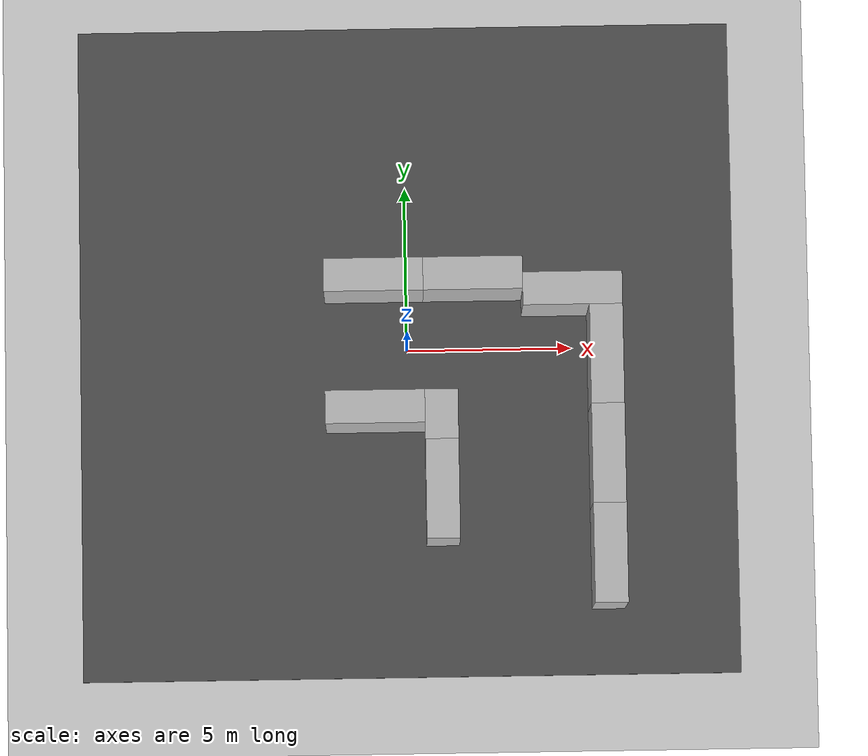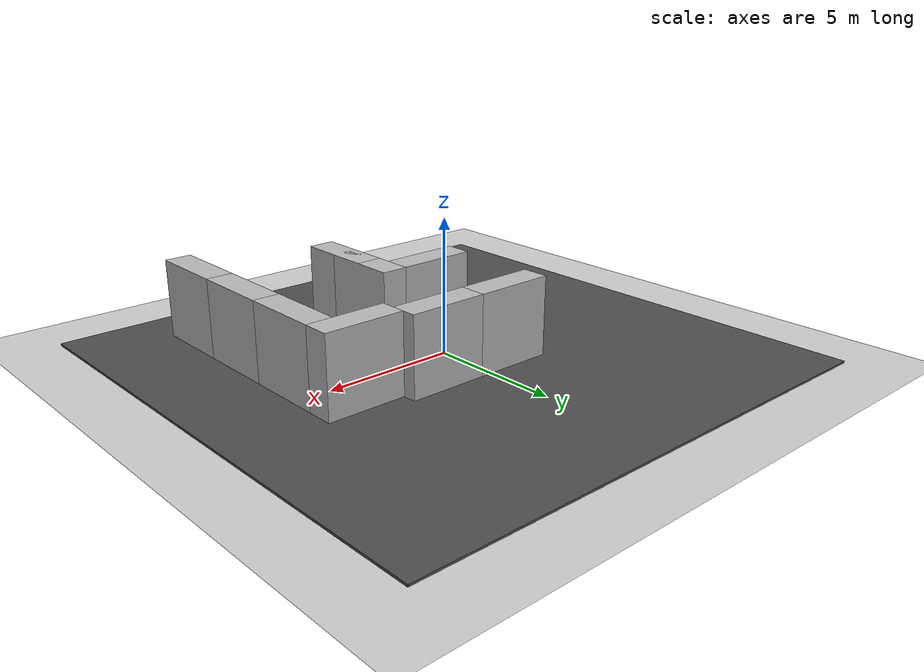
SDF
<sdf version="1.4">
 <world name="default">
  <light name="sun0" type="spotlight">
   <pose>0 0 3 0 -0 0</pose>
   <diffuse>0.1 0.1 0.1 1</diffuse>
   <specular>0.1 0.1 0.1 1</specular>
   <attenuation>
    <range>20</range>
    <constant>0.9</constant>
    <linear>0.01</linear>
    <quadratic>0.001</quadratic>
   </attenuation>
   <direction>-0 0 -1</direction>
  </light>
  <light name="sun1" type="spotlight">
   <pose>5 0 3 0 -0 0</pose>
   <diffuse>0.1 0.1 0.1 1</diffuse>
   <specular>0.1 0.1 0.1 1</specular>
   <attenuation>
    <range>20</range>
    <constant>0.9</constant>
    <linear>0.01</linear>
    <quadratic>0.001</quadratic>
   </attenuation>
   <direction>-0 0 -1</direction>
  </light>
  <light name="sun2" type="spotlight">
   <pose>0 5 3 0 -0 0</pose>
   <diffuse>0.1 0.1 0.1 1</diffuse>
   <specular>0.1 0.1 0.1 1</specular>
   <attenuation>
    <range>20</range>
    <constant>0.9</constant>
    <linear>0.01</linear>
    <quadratic>0.001</quadratic>
   </attenuation>
   <direction>-0 0 -1</direction>
  </light>
  <light name="sun3" type="spotlight">
   <pose>-5 0 3 0 -0 0</pose>
   <diffuse>0.1 0.1 0.1 1</diffuse>
   <specular>0.1 0.1 0.1 1</specular>
   <attenuation>
    <range>20</range>
    <constant>0.9</constant>
    <linear>0.01</linear>
    <quadratic>0.001</quadratic>
   </attenuation>
   <direction>-0 0 -1</direction>
  </light>
  <light name="sun4" type="spotlight">
   <pose>0 -5 3 0 -0 0</pose>
   <diffuse>0.1 0.1 0.1 1</diffuse>
   <specular>0.1 0.1 0.1 1</specular>
   <attenuation>
    <range>20</range>
    <constant>0.9</constant>
    <linear>0.01</linear>
    <quadratic>0.001</quadratic>
   </attenuation>
   <direction>-0 0 -1</direction>
  </light>
  <light name="sun5" type="spotlight">
   <pose>5 5 3 0 -0 0</pose>
   <diffuse>0.1 0.1 0.1 1</diffuse>
   <specular>0.1 0.1 0.1 1</specular>
   <attenuation>
    <range>20</range>
    <constant>0.9</constant>
    <linear>0.01</linear>
    <quadratic>0.001</quadratic>
   </attenuation>
   <direction>-0 0 -1</direction>
  </light>
  <light name="sun6" type="spotlight">
   <pose>5 -5 3 0 -0 0</pose>
   <diffuse>0.1 0.1 0.1 1</diffuse>
   <specular>0.1 0.1 0.1 1</specular>
   <attenuation>
    <range>20</range>
    <constant>0.9</constant>
    <linear>0.01</linear>
    <quadratic>0.001</quadratic>
   </attenuation>
   <direction>-0 0 -1</direction>
  </light>
  <light name="sun7" type="spotlight">
   <pose>-5 5 3 0 -0 0</pose>
   <diffuse>0.1 0.1 0.1 1</diffuse>
   <specular>0.1 0.1 0.1 1</specular>
   <attenuation>
    <range>20</range>
    <constant>0.9</constant>
    <linear>0.01</linear>
    <quadratic>0.001</quadratic>
   </attenuation>
   <direction>-0 0 -1</direction>
  </light>
  <light name="sun8" type="spotlight">
   <pose>-5 -5 3 0 -0 0</pose>
   <diffuse>0.1 0.1 0.1 1</diffuse>
   <specular>0.1 0.1 0.1 1</specular>
   <attenuation>
    <range>20</range>
    <constant>0.9</constant>
    <linear>0.01</linear>
    <quadratic>0.001</quadratic>
   </attenuation>
   <direction>-0 0 -1</direction>
  </light>
  <light name="sun9" type="spotlight">
   <pose>-10 -10 3 0 -0 0</pose>
   <diffuse>0.1 0.1 0.1 1</diffuse>
   <specular>0.1 0.1 0.1 1</specular>
   <attenuation>
    <range>20</range>
    <constant>0.9</constant>
    <linear>0.01</linear>
    <quadratic>0.001</quadratic>
   </attenuation>
   <direction>-0 0 -1</direction>
  </light>
  <light name="sun10" type="spotlight">
   <pose>-10 -5 3 0 -0 0</pose>
   <diffuse>0.1 0.1 0.1 1</diffuse>
   <specular>0.1 0.1 0.1 1</specular>
   <attenuation>
    <range>20</range>
    <constant>0.9</constant>
    <linear>0.01</linear>
    <quadratic>0.001</quadratic>
   </attenuation>
   <direction>-0 0 -1</direction>
  </light>
  <light name="sun11" type="spotlight">
   <pose>-10 0 3 0 -0 0</pose>
   <diffuse>0.1 0.1 0.1 1</diffuse>
   <specular>0.1 0.1 0.1 1</specular>
   <attenuation>
    <range>20</range>
    <constant>0.9</constant>
    <linear>0.01</linear>
    <quadratic>0.001</quadratic>
   </attenuation>
   <direction>-0 0 -1</direction>
  </light>
  <light name="sun12" type="spotlight">
   <pose>-10 5 3 0 -0 0</pose>
   <diffuse>0.1 0.1 0.1 1</diffuse>
   <specular>0.1 0.1 0.1 1</specular>
   <attenuation>
    <range>20</range>
    <constant>0.9</constant>
    <linear>0.01</linear>
    <quadratic>0.001</quadratic>
   </attenuation>
   <direction>-0 0 -1</direction>
  </light>
  <light name="sun13" type="spotlight">
   <pose>-10 10 3 0 -0 0</pose>
   <diffuse>0.1 0.1 0.1 1</diffuse>
   <specular>0.1 0.1 0.1 1</specular>
   <attenuation>
    <range>20</range>
    <constant>0.9</constant>
    <linear>0.01</linear>
    <quadratic>0.001</quadratic>
   </attenuation>
   <direction>-0 0 -1</direction>
  </light>
  <light name="sun14" type="spotlight">
   <pose>-5 -10 3 0 -0 0</pose>
   <diffuse>0.1 0.1 0.1 1</diffuse>
   <specular>0.1 0.1 0.1 1</specular>
   <attenuation>
    <range>20</range>
    <constant>0.9</constant>
    <linear>0.01</linear>
    <quadratic>0.001</quadratic>
   </attenuation>
   <direction>-0 0 -1</direction>
  </light>
  <light name="sun15" type="spotlight">
   <pose>-5 10 3 0 -0 0</pose>
   <diffuse>0.1 0.1 0.1 1</diffuse>
   <specular>0.1 0.1 0.1 1</specular>
   <attenuation>
    <range>20</range>
    <constant>0.9</constant>
    <linear>0.01</linear>
    <quadratic>0.001</quadratic>
   </attenuation>
   <direction>-0 0 -1</direction>
  </light>
  <light name="sun16" type="spotlight">
   <pose>0 -10 3 0 -0 0</pose>
   <diffuse>0.1 0.1 0.1 1</diffuse>
   <specular>0.1 0.1 0.1 1</specular>
   <attenuation>
    <range>20</range>
    <constant>0.9</constant>
    <linear>0.01</linear>
    <quadratic>0.001</quadratic>
   </attenuation>
   <direction>-0 0 -1</direction>
  </light>
  <light name="sun17" type="spotlight">
   <pose>0 10 3 0 -0 0</pose>
   <diffuse>0.1 0.1 0.1 1</diffuse>
   <specular>0.1 0.1 0.1 1</specular>
   <attenuation>
    <range>20</range>
    <constant>0.9</constant>
    <linear>0.01</linear>
    <quadratic>0.001</quadratic>
   </attenuation>
   <direction>-0 0 -1</direction>
  </light>
  <light name="sun18" type="spotlight">
   <pose>5 -10 3 0 -0 0</pose>
   <diffuse>0.1 0.1 0.1 1</diffuse>
   <specular>0.1 0.1 0.1 1</specular>
   <attenuation>
    <range>20</range>
    <constant>0.9</constant>
    <linear>0.01</linear>
    <quadratic>0.001</quadratic>
   </attenuation>
   <direction>-0 0 -1</direction>
  </light>
  <light name="sun19" type="spotlight">
   <pose>5 10 3 0 -0 0</pose>
   <diffuse>0.1 0.1 0.1 1</diffuse>
   <specular>0.1 0.1 0.1 1</specular>
   <attenuation>
    <range>20</range>
    <constant>0.9</constant>
    <linear>0.01</linear>
    <quadratic>0.001</quadratic>
   </attenuation>
   <direction>-0 0 -1</direction>
  </light>
  <light name="sun20" type="spotlight">
   <pose>10 -10 3 0 -0 0</pose>
   <diffuse>0.1 0.1 0.1 1</diffuse>
   <specular>0.1 0.1 0.1 1</specular>
   <attenuation>
    <range>20</range>
    <constant>0.9</constant>
    <linear>0.01</linear>
    <quadratic>0.001</quadratic>
   </attenuation>
   <direction>-0 0 -1</direction>
  </light>
  <light name="sun21" type="spotlight">
   <pose>10 -5 3 0 -0 0</pose>
   <diffuse>0.1 0.1 0.1 1</diffuse>
   <specular>0.1 0.1 0.1 1</specular>
   <attenuation>
    <range>20</range>
    <constant>0.9</constant>
    <linear>0.01</linear>
    <quadratic>0.001</quadratic>
   </attenuation>
   <direction>-0 0 -1</direction>
  </light>
  <light name="sun22" type="spotlight">
   <pose>10 0 3 0 -0 0</pose>
   <diffuse>0.1 0.1 0.1 1</diffuse>
   <specular>0.1 0.1 0.1 1</specular>
   <attenuation>
    <range>20</range>
    <constant>0.9</constant>
    <linear>0.01</linear>
    <quadratic>0.001</quadratic>
   </attenuation>
   <direction>-0 0 -1</direction>
  </light>
  <light name="sun23" type="spotlight">
   <pose>10 5 3 0 -0 0</pose>
   <diffuse>0.1 0.1 0.1 1</diffuse>
   <specular>0.1 0.1 0.1 1</specular>
   <attenuation>
    <range>20</range>
    <constant>0.9</constant>
    <linear>0.01</linear>
    <quadratic>0.001</quadratic>
   </attenuation>
   <direction>-0 0 -1</direction>
  </light>
  <light name="sun24" type="spotlight">
   <pose>10 10 3 0 -0 0</pose>
   <diffuse>0.1 0.1 0.1 1</diffuse>
   <specular>0.1 0.1 0.1 1</specular>
   <attenuation>
    <range>20</range>
    <constant>0.9</constant>
    <linear>0.01</linear>
    <quadratic>0.001</quadratic>
   </attenuation>
   <direction>-0 0 -1</direction>
  </light>
  <plugin name="ros_interface_plugin" filename="librotors_gazebo_ros_interface_plugin.so"/>
  <physics type="ode">
   <ode>
    <solver><type>quick</type><iters>1000</iters><sor>1.3</sor></solver>
    <constraints>
     <cfm>0</cfm>
     <erp>0.2</erp>
     <contact_max_correcting_vel>100</contact_max_correcting_vel>
     <contact_surface_layer>0.001</contact_surface_layer>
    </constraints>
   </ode>
   <max_step_size>0.01</max_step_size>
   <real_time_factor>1</real_time_factor>
   <real_time_update_rate>100</real_time_update_rate>
   <gravity>0 0 -9.8</gravity>
  </physics>
  <scene><ambient>0.4 0.4 0.4 1</ambient><background>0.7 0.7 0.7 1</background><shadows>1</shadows></scene>
  <spherical_coordinates>
   <surface_model>EARTH_WGS84</surface_model>
   <latitude_deg>0</latitude_deg>
   <longitude_deg>0</longitude_deg>
   <elevation>0</elevation>
   <heading_deg>0</heading_deg>
  </spherical_coordinates>
  <model name="ground_plane">
   <static>1</static>
   <link name="link">
    <collision name="collision">
     <geometry><plane><normal>0 0 1</normal><size>100 100</size></plane></geometry>
     <surface><friction><ode><mu>100</mu><mu2>50</mu2></ode></friction></surface>
    </collision>
    <visual name="visual">
     <cast_shadows>0</cast_shadows>
     <geometry><plane><normal>0 0 1</normal><size>100 100</size></plane></geometry>
     <material>
      <script><uri>file://media/materials/scripts/gazebo.material</uri><name>Gazebo/Grey</name></script>
     </material>
    </visual>
    <velocity_decay><linear>0</linear><angular>0</angular></velocity_decay>
   </link>
  </model>
  <model name="brick_box_3x1x3_0">
   <static>1</static>
   <link name="chassis">
    <pose>0 0 1.5 0 -0 0</pose>
    <collision name="collision"><geometry><box><size>3 1 3</size></box></geometry></collision>
    <visual name="visual">
     <geometry><mesh><uri>model://brick_box_3x1x3/meshes/simple_box.dae</uri><scale>3 1 3</scale></mesh></geometry>
     <material>
      <script>
       <uri>model://brick_box_3x1x3/materials/scripts</uri>
       <uri>model://brick_box_3x1x3/materials/textures</uri>
       <name>BrickBox/Diffuse</name>
      </script>
     </material>
    </visual>
    <velocity_decay><linear>0</linear><angular>0</angular></velocity_decay>
   </link>
   <pose>6 -0.5 0 0 -0 1.5708</pose>
  </model>
  <model name="brick_box_3x1x3">
   <static>1</static>
   <link name="chassis">
    <pose>0 0 1.5 0 -0 0</pose>
    <collision name="collision"><geometry><box><size>3 1 3</size></box></geometry></collision>
    <visual name="visual">
     <geometry><mesh><uri>model://brick_box_3x1x3/meshes/simple_box.dae</uri><scale>3 1 3</scale></mesh></geometry>
     <material>
      <script>
       <uri>model://brick_box_3x1x3/materials/scripts</uri>
       <uri>model://brick_box_3x1x3/materials/textures</uri>
       <name>BrickBox/Diffuse</name>
      </script>
     </material>
    </visual>
    <velocity_decay><linear>0</linear><angular>0</angular></velocity_decay>
   </link>
   <pose>5 1.5 0 0 -0 0</pose>
  </model>
  <model name="brick_box_3x1x3_1">
   <static>1</static>
   <link name="chassis">
    <pose>0 0 1.5 0 -0 0</pose>
    <collision name="collision"><geometry><box><size>3 1 3</size></box></geometry></collision>
    <visual name="visual">
     <geometry><mesh><uri>model://brick_box_3x1x3/meshes/simple_box.dae</uri><scale>3 1 3</scale></mesh></geometry>
     <material>
      <script>
       <uri>model://brick_box_3x1x3/materials/scripts</uri>
       <uri>model://brick_box_3x1x3/materials/textures</uri>
       <name>BrickBox/Diffuse</name>
      </script>
     </material>
    </visual>
    <velocity_decay><linear>0</linear><angular>0</angular></velocity_decay>
   </link>
   <pose>6 -3.5 0 0 -0 1.5708</pose>
  </model>
  <model name="brick_box_3x1x3_2">
   <static>1</static>
   <link name="chassis">
    <pose>0 0 1.5 0 -0 0</pose>
    <collision name="collision"><geometry><box><size>3 1 3</size></box></geometry></collision>
    <visual name="visual">
     <geometry><mesh><uri>model://brick_box_3x1x3/meshes/simple_box.dae</uri><scale>3 1 3</scale></mesh></geometry>
     <material>
      <script>
       <uri>model://brick_box_3x1x3/materials/scripts</uri>
       <uri>model://brick_box_3x1x3/materials/textures</uri>
       <name>BrickBox/Diffuse</name>
      </script>
     </material>
    </visual>
    <velocity_decay><linear>0</linear><angular>0</angular></velocity_decay>
   </link>
   <pose>2 2 0 0 -0 0</pose>
  </model>
  <model name="brick_box_3x1x3_3">
   <static>1</static>
   <link name="chassis">
    <pose>0 0 1.5 0 -0 0</pose>
    <collision name="collision"><geometry><box><size>3 1 3</size></box></geometry></collision>
    <visual name="visual">
     <geometry><mesh><uri>model://brick_box_3x1x3/meshes/simple_box.dae</uri><scale>3 1 3</scale></mesh></geometry>
     <material>
      <script>
       <uri>model://brick_box_3x1x3/materials/scripts</uri>
       <uri>model://brick_box_3x1x3/materials/textures</uri>
       <name>BrickBox/Diffuse</name>
      </script>
     </material>
    </visual>
    <velocity_decay><linear>0</linear><angular>0</angular></velocity_decay>
   </link>
   <pose>-1 2 0 0 -0 0</pose>
  </model>
  <model name="brick_box_3x1x3_4">
   <static>1</static>
   <link name="chassis">
    <pose>0 0 1.5 0 -0 0</pose>
    <collision name="collision"><geometry><box><size>3 1 3</size></box></geometry></collision>
    <visual name="visual">
     <geometry><mesh><uri>model://brick_box_3x1x3/meshes/simple_box.dae</uri><scale>3 1 3</scale></mesh></geometry>
     <material>
      <script>
       <uri>model://brick_box_3x1x3/materials/scripts</uri>
       <uri>model://brick_box_3x1x3/materials/textures</uri>
       <name>BrickBox/Diffuse</name>
      </script>
     </material>
    </visual>
    <velocity_decay><linear>0</linear><angular>0</angular></velocity_decay>
   </link>
   <pose>-1 -2 0 0 -0 0</pose>
  </model>
  <model name="brick_box_3x1x3_5">
   <static>1</static>
   <link name="chassis">
    <pose>0 0 1.5 0 -0 0</pose>
    <collision name="collision"><geometry><box><size>3 1 3</size></box></geometry></collision>
    <visual name="visual">
     <geometry><mesh><uri>model://brick_box_3x1x3/meshes/simple_box.dae</uri><scale>3 1 3</scale></mesh></geometry>
     <material>
      <script>
       <uri>model://brick_box_3x1x3/materials/scripts</uri>
       <uri>model://brick_box_3x1x3/materials/textures</uri>
       <name>BrickBox/Diffuse</name>
      </script>
     </material>
    </visual>
    <velocity_decay><linear>0</linear><angular>0</angular></velocity_decay>
   </link>
   <pose>1 -3 0 0 -0 1.5708</pose>
  </model>
  <model name="brick_box_3x1x3_6">
   <static>1</static>
   <link name="chassis">
    <pose>0 0 1.5 0 -0 0</pose>
    <collision name="collision"><geometry><box><size>3 1 3</size></box></geometry></collision>
    <visual name="visual">
     <geometry><mesh><uri>model://brick_box_3x1x3/meshes/simple_box.dae</uri><scale>3 1 3</scale></mesh></geometry>
     <material>
      <script>
       <uri>model://brick_box_3x1x3/materials/scripts</uri>
       <uri>model://brick_box_3x1x3/materials/textures</uri>
       <name>BrickBox/Diffuse</name>
      </script>
     </material>
    </visual>
    <velocity_decay><linear>0</linear><angular>0</angular></velocity_decay>
   </link>
   <pose>1 -4.5 0 0 -0 1.5708</pose>
  </model>
  <model name="brick_box_3x1x3_7">
   <static>1</static>
   <link name="chassis">
    <pose>0 0 1.5 0 -0 0</pose>
    <collision name="collision"><geometry><box><size>3 1 3</size></box></geometry></collision>
    <visual name="visual">
     <geometry><mesh><uri>model://brick_box_3x1x3/meshes/simple_box.dae</uri><scale>3 1 3</scale></mesh></geometry>
     <material>
      <script>
       <uri>model://brick_box_3x1x3/materials/scripts</uri>
       <uri>model://brick_box_3x1x3/materials/textures</uri>
       <name>BrickBox/Diffuse</name>
      </script>
     </material>
    </visual>
    <velocity_decay><linear>0</linear><angular>0</angular></velocity_decay>
   </link>
   <pose>6 -6.5 0 0 -0 1.5708</pose>
  </model>
  <model name="asphalt_plane">
   <static>1</static>
   <link name="link">
    <collision name="collision"><geometry><box><size>20 20 0.1</size></box></geometry></collision>
    <visual name="visual">
     <cast_shadows>0</cast_shadows>
     <geometry><box><size>20 20 0.1</size></box></geometry>
     <material>
      <script>
       <uri>model://asphalt_plane/materials/scripts</uri>
       <uri>model://asphalt_plane/materials/textures</uri>
       <name>vrc/asphalt</name>
      </script>
     </material>
    </visual>
    <velocity_decay><linear>0</linear><angular>0</angular></velocity_decay>
   </link>
  </model>
 </world>
</sdf>
